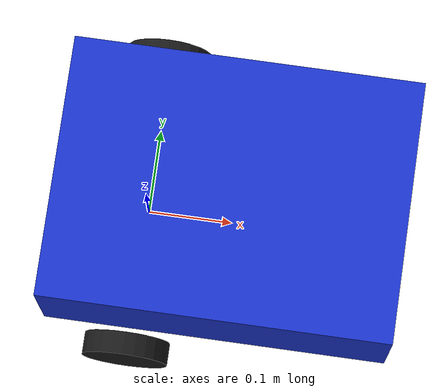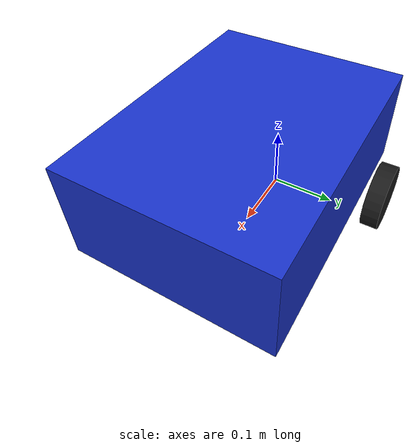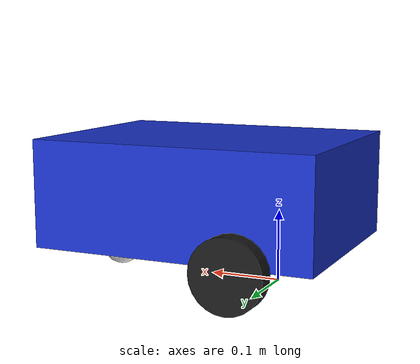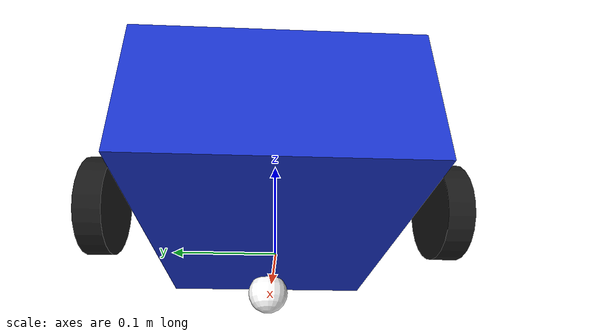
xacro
<?xml version="1.0"?>
<robot xmlns:xacro="http://www.ros.org/wiki/xacro">

  <xacro:include filename="inertial_macros.xacro"/>

  <material name="white"><color rgba="1 1 1 1"/></material>
  <material name="blue"><color rgba="0.1 0.2 0.8 1"/></material>
  <material name="black"><color rgba="0.1 0.1 0.1 1"/></material>

  <xacro:property name="chassis_length" value="0.4"/>
  <xacro:property name="chassis_width" value="0.3"/>
  <xacro:property name="chassis_height" value="0.15"/>
  <xacro:property name="chassis_mass" value="5.0"/>

  <xacro:property name="wheel_radius" value="0.05"/>
  <xacro:property name="wheel_thickness" value="0.026"/>
  <xacro:property name="wheel_mass" value="0.2"/>
  <xacro:property name="wheel_offset_y" value="0.175"/>

  <xacro:property name="caster_wheel_radius" value="0.03"/>
  <xacro:property name="caster_wheel_mass" value="0.1"/>

  <link name="base_footprint"/>

  <joint name="base_footprint_joint" type="fixed">
    <parent link="base_footprint"/>
    <child link="base_link"/>
    <origin xyz="0 0 ${wheel_radius}" rpy="0 0 0"/>
  </joint>

  <link name="base_link">
    <visual>
      <origin xyz="${chassis_length/2 - 0.1} 0 ${chassis_height/2}"/>
      <geometry>
        <box size="${chassis_length} ${chassis_width} ${chassis_height}"/>
      </geometry>
      <material name="blue"/>
    </visual>
    <collision>
      <origin xyz="${chassis_length/2 - 0.1} 0 ${chassis_height/2}"/>
      <geometry>
        <box size="${chassis_length} ${chassis_width} ${chassis_height}"/>
      </geometry>
    </collision>
    <xacro:inertial_box mass="${chassis_mass}" x="${chassis_length}" y="${chassis_width}" z="${chassis_height}">
      <origin xyz="${chassis_length/2 - 0.1} 0 ${chassis_height/2}" rpy="0 0 0"/>
    </xacro:inertial_box>
  </link>

  <joint name="left_wheel_joint" type="continuous">
    <parent link="base_link"/>
    <child link="left_wheel"/>
    <origin xyz="0 ${wheel_offset_y} 0" rpy="-${pi/2} 0 0"/>
    <axis xyz="0 0 1"/>
  </joint>

  <link name="left_wheel">
    <visual>
      <geometry><cylinder radius="${wheel_radius}" length="${wheel_thickness}"/></geometry>
      <material name="black"/>
    </visual>
    <collision>
      <geometry><cylinder radius="${wheel_radius}" length="${wheel_thickness}"/></geometry>
    </collision>
    <xacro:inertial_cylinder mass="${wheel_mass}" length="${wheel_thickness}" radius="${wheel_radius}">
      <origin xyz="0 0 0" rpy="0 0 0"/>
    </xacro:inertial_cylinder>
  </link>

  <joint name="right_wheel_joint" type="continuous">
    <parent link="base_link"/>
    <child link="right_wheel"/>
    <origin xyz="0 -${wheel_offset_y} 0" rpy="${pi/2} 0 0"/>
    <axis xyz="0 0 -1"/>
  </joint>

  <link name="right_wheel">
    <visual>
      <geometry><cylinder radius="${wheel_radius}" length="${wheel_thickness}"/></geometry>
      <material name="black"/>
    </visual>
    <collision>
      <geometry><cylinder radius="${wheel_radius}" length="${wheel_thickness}"/></geometry>
    </collision>
    <xacro:inertial_cylinder mass="${wheel_mass}" length="${wheel_thickness}" radius="${wheel_radius}">
      <origin xyz="0 0 0" rpy="0 0 0"/>
    </xacro:inertial_cylinder>
  </link>

  <joint name="caster_wheel_joint" type="fixed">
    <parent link="base_link"/>
    <child link="caster_wheel"/>
    <origin xyz="${chassis_length - 0.15} 0 -${wheel_radius - caster_wheel_radius}"/>
  </joint>

  <link name="caster_wheel">
    <visual>
      <geometry><sphere radius="${caster_wheel_radius}"/></geometry>
      <material name="white"/>
    </visual>
    <collision>
      <geometry><sphere radius="${caster_wheel_radius}"/></geometry>
    </collision>
    <xacro:inertial_sphere mass="${caster_wheel_mass}" radius="${caster_wheel_radius}">
      <origin xyz="0 0 0" rpy="0 0 0"/>
    </xacro:inertial_sphere>
  </link>

</robot>

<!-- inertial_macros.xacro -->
<robot xmlns:xacro="http://www.ros.org/wiki/xacro">

  <xacro:macro name="inertial_box" params="mass x y z *origin">
    <inertial>
      <xacro:insert_block name="origin"/>
      <mass value="${mass}"/>
      <inertia ixx="${(1/12) * mass * (y*y + z*z)}" ixy="0.0" ixz="0.0"
               iyy="${(1/12) * mass * (x*x + z*z)}" iyz="0.0"
               izz="${(1/12) * mass * (x*x + y*y)}" />
    </inertial>
  </xacro:macro>

  <xacro:macro name="inertial_cylinder" params="mass length radius *origin">
    <inertial>
      <xacro:insert_block name="origin"/>
      <mass value="${mass}"/>
      <inertia ixx="${(1/12) * mass * (3*radius*radius + length*length)}" ixy="0.0" ixz="0.0"
               iyy="${(1/12) * mass * (3*radius*radius + length*length)}" iyz="0.0"
               izz="${(1/2) * mass * (radius*radius)}" />
    </inertial>
  </xacro:macro>

  <xacro:macro name="inertial_sphere" params="mass radius *origin">
    <inertial>
      <xacro:insert_block name="origin"/>
      <mass value="${mass}"/>
      <inertia ixx="${(2/5) * mass * radius * radius}" ixy="0.0" ixz="0.0"
               iyy="${(2/5) * mass * radius * radius}" iyz="0.0"
               izz="${(2/5) * mass * radius * radius}" />
    </inertial>
  </xacro:macro>

</robot>
